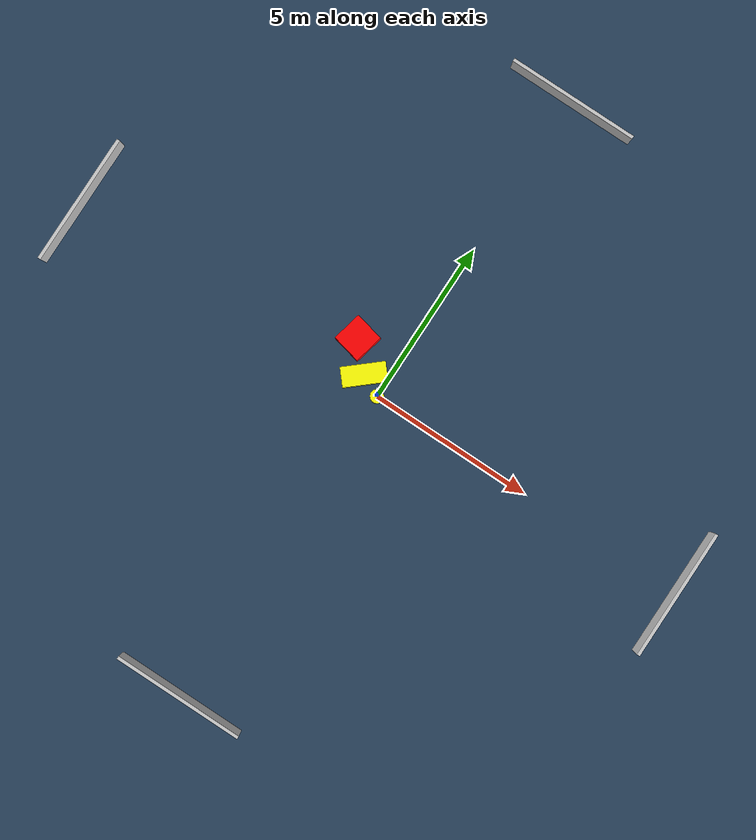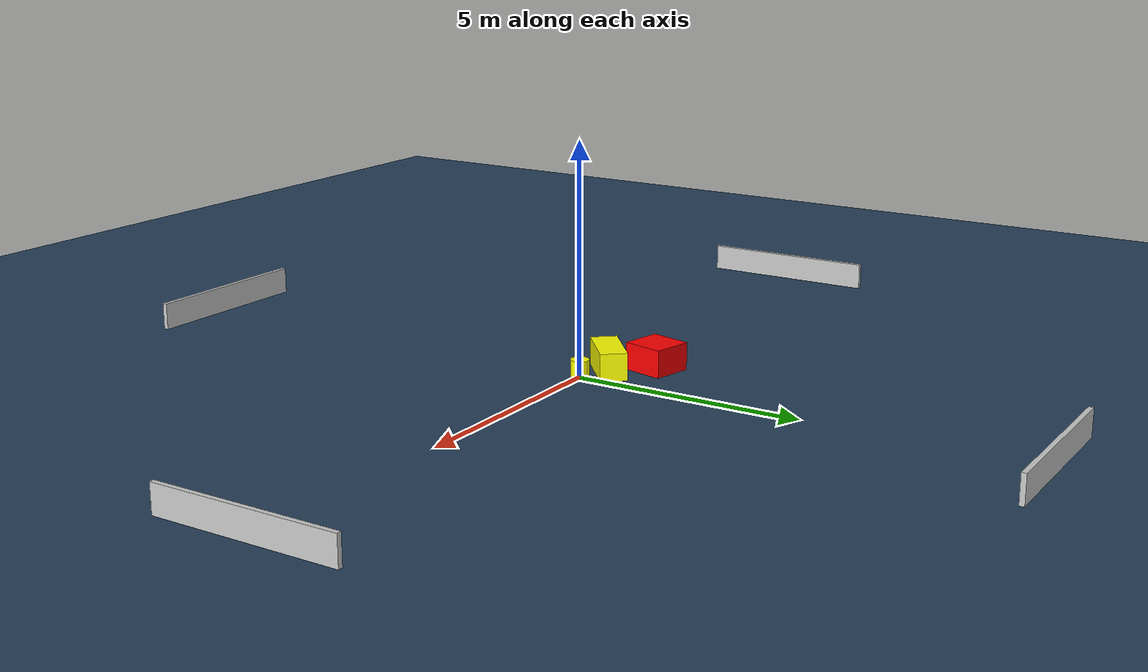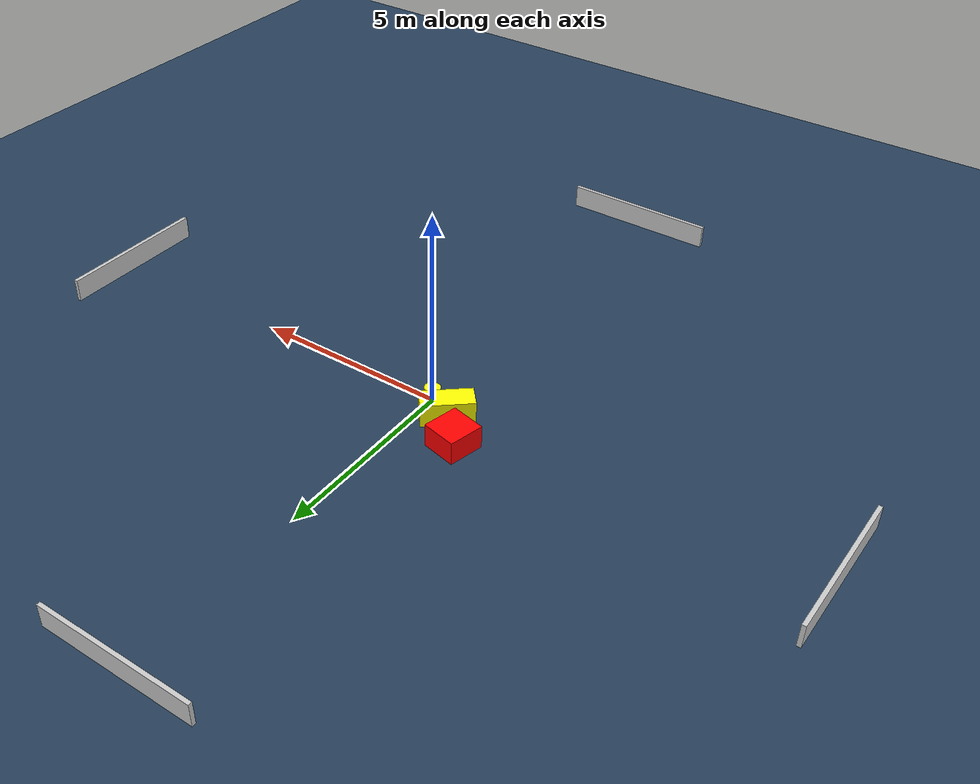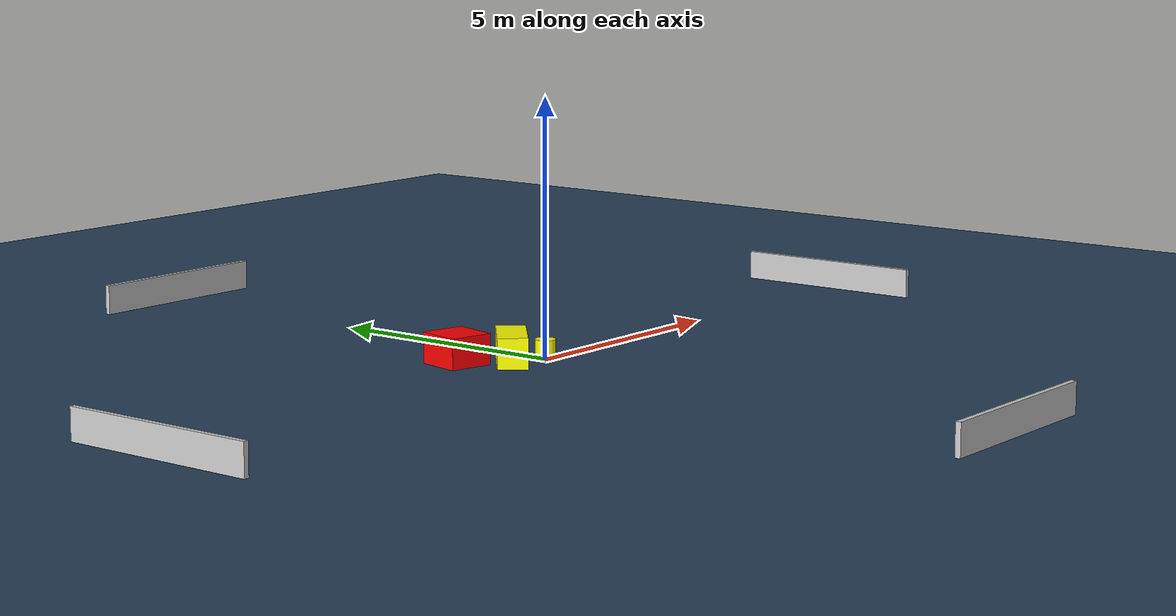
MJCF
<?xml version="1.0" ?>
<mujoco model="generated_environment">
  <option timestep="0.01" integrator="RK4" cone="elliptic"/>
  <default>
    <geom density="1"/>
  </default>
  <asset>
    <texture builtin="gradient" height="3072" name="skybox" rgb1="0.3 0.5 0.7" rgb2="0 0 0" type="skybox" width="512"/>
    <texture builtin="checker" height="300" name="groundplane" rgb1="0.2 0.3 0.4" rgb2="0.1 0.2 0.3" type="2d" width="300"/>
    <material name="groundplane" reflectance="0.2" texrepeat="5 5" texture="groundplane"/>
  </asset>
  <worldbody>
    <light dir="0 0 -1" directional="true" pos="0 0 1.5"/>
    <geom condim="3" friction="0.5 0.005 0.001" material="groundplane" name="floor" pos="0 0 0" size="0 0 0.05" type="plane"/>
    <body name="walls">
      <geom name="wall_1" condim="4" pos="-10.0 0.0 0.3" rgba="0.800000011920929 0.800000011920929 0.800000011920929 1.0" size="0.05 2.0 0.3" type="box"/>
      <geom name="wall_2" condim="4" pos="10.0 0.0 0.3" rgba="0.800000011920929 0.800000011920929 0.800000011920929 1.0" size="0.05 2.0 0.3" type="box"/>
      <geom name="wall_3" condim="4" pos="0.0 -10.0 0.3" rgba="0.800000011920929 0.800000011920929 0.800000011920929 1.0" size="2.0 0.05 0.3" type="box"/>
      <geom name="wall_4" condim="4" pos="0.0 10.0 0.3" rgba="0.800000011920929 0.800000011920929 0.800000011920929 1.0" size="2.0 0.05 0.3" type="box"/>
    </body>
    <body name="robot">
      <joint name="joint_x" type="slide" pos="0 0 0" axis="1 0 0"/>
      <joint name="joint_y" type="slide" pos="0 0 0" axis="0 1 0"/>
      <geom name="robot" type="cylinder" pos="0.0 0.0 0.2" size="0.2 0.2 0.0" mass="5.0" friction="1.0 0.005 0.0001" condim="4" rgba="1.0 1.0 0.0 1.0"/>
    </body>
    <body name="obstacle_1_movable">
      <geom name="obstacle_1_movable" condim="4" pos="-0.6356184653707381 0.310400266863482 0.3" euler="0 0 220.98024217709542" friction="0.0 0.005 0.001" rgba="1.0 1.0 0.0 1.0" size="0.6479914381147308 0.29116680511866677 0.3" type="box" mass="0.1"/>
      <joint type="free"/>
    </body>
    <body name="obstacle_2_static">
      <geom name="obstacle_2_static" condim="4" pos="-1.3429435805774685 1.063988381778542 0.3" euler="0 0 347.1837744555095" friction="0.0 0.005 0.001" rgba="1.0 0.0 0.0 1.0" size="0.4460492495240408 0.45633175926109254 0.3" type="box"/>
    </body>
  </worldbody>
  <actuator>
    <motor name="actuator_x" joint="joint_x" gear="1" ctrlrange="-1 1"/>
    <motor name="actuator_y" joint="joint_y" gear="1" ctrlrange="-1 1"/>
  </actuator>
</mujoco>
